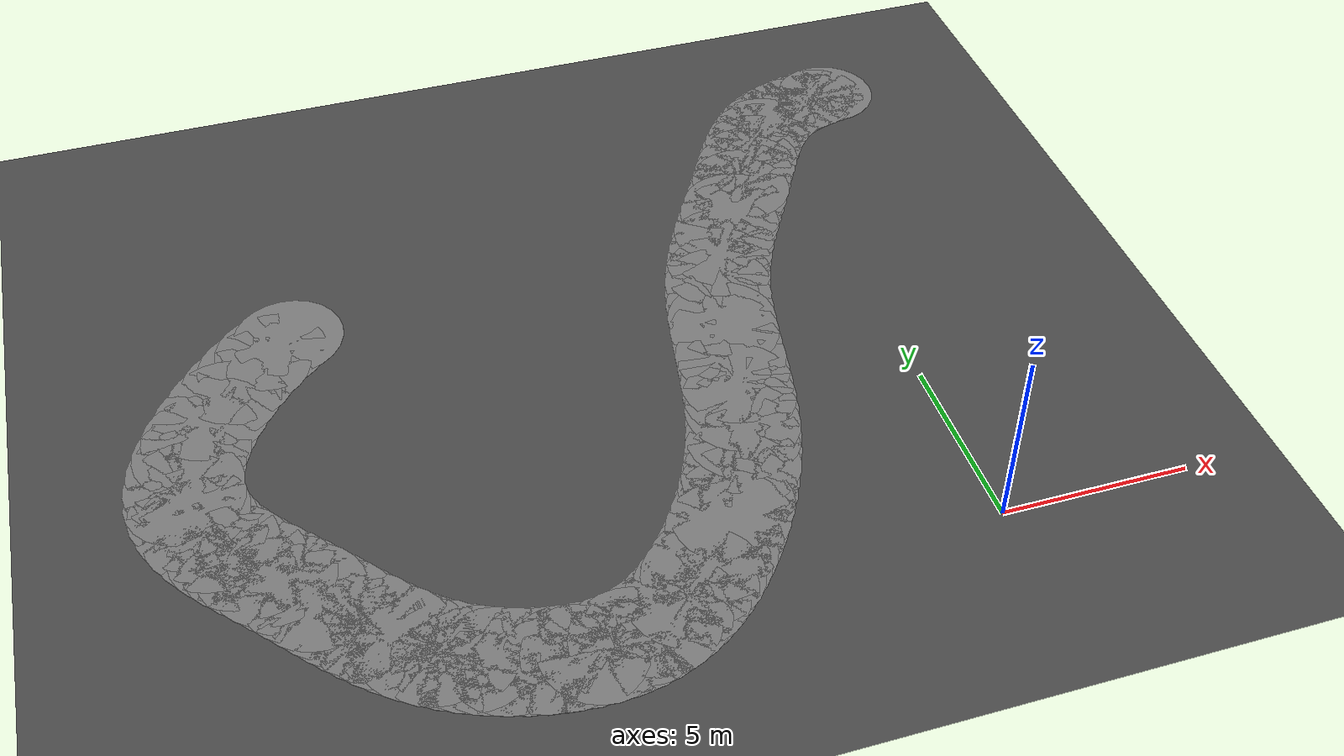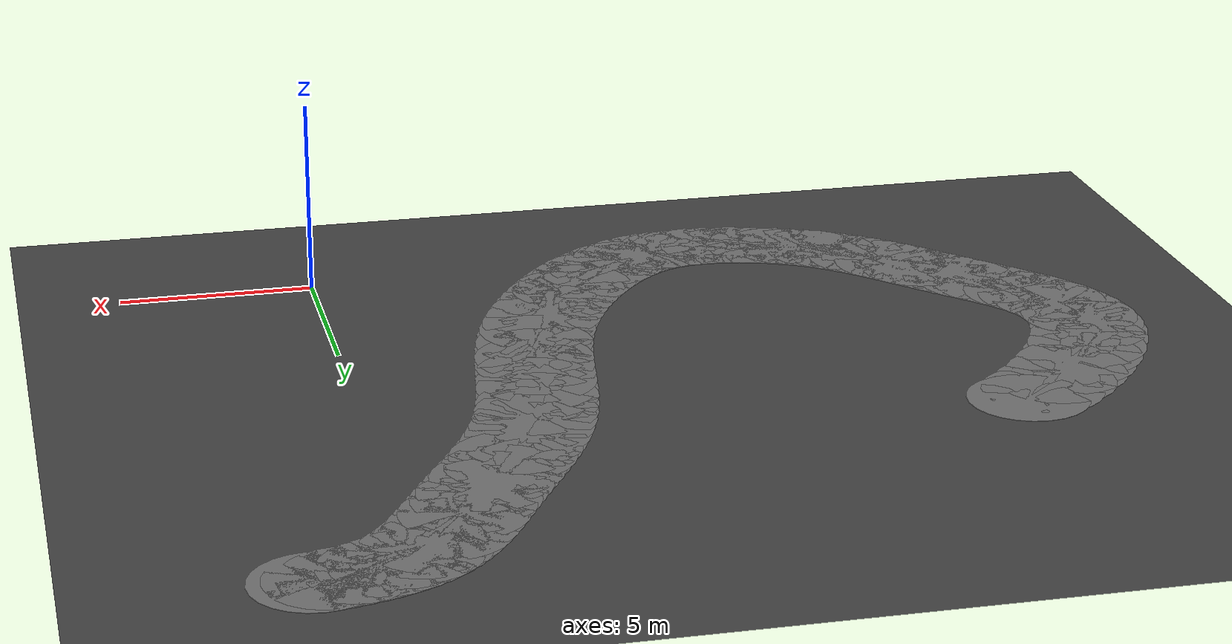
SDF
<sdf version="1.6">
 <world name="mirror_edge_world">
  <model name="ground_plane">
   <static>true</static>
   <link name="link">
    <collision name="collision">
     <geometry><plane><normal>0 0 1</normal><size>100 100</size></plane></geometry>
    </collision>
    <visual name="visual">
     <geometry><plane><normal>0 0 1</normal><size>100 100</size></plane></geometry>
     <material>
      <ambient>0.3 0.3 0.3 1</ambient>
      <diffuse>0.3 0.3 0.3 1</diffuse>
      <specular>0.5 0.5 0.5 1</specular>
      <emissive>0 0 0 1</emissive>
     </material>
    </visual>
   </link>
  </model>
  <model name="corridor_hex_398_0">
   <static>true</static>
   <link name="link">
    <pose>-15.799 11.472 0.005 0 0 0</pose>
    <visual name="visual">
     <geometry><cylinder><radius>1.5</radius><length>0.01</length><segments>6</segments></cylinder></geometry>
     <material>
      <ambient>0.5 0.5 0.5 1</ambient>
      <diffuse>0.5 0.5 0.5 1</diffuse>
      <specular>0.3 0.3 0.3 1</specular>
      <emissive>0 0 0 1</emissive>
     </material>
    </visual>
   </link>
  </model>
  <model name="corridor_hex_399_0">
   <static>true</static>
   <link name="link">
    <pose>-16.321 11.047 0.005 0 0 0</pose>
    <visual name="visual">
     <geometry><cylinder><radius>1.5</radius><length>0.01</length><segments>6</segments></cylinder></geometry>
     <material>
      <ambient>0.5 0.5 0.5 1</ambient>
      <diffuse>0.5 0.5 0.5 1</diffuse>
      <specular>0.3 0.3 0.3 1</specular>
      <emissive>0 0 0 1</emissive>
     </material>
    </visual>
   </link>
  </model>
  <model name="corridor_hex_400_0">
   <static>true</static>
   <link name="link">
    <pose>-16.825 10.576 0.005 0 0 0</pose>
    <visual name="visual">
     <geometry><cylinder><radius>1.5</radius><length>0.01</length><segments>6</segments></cylinder></geometry>
     <material>
      <ambient>0.5 0.5 0.5 1</ambient>
      <diffuse>0.5 0.5 0.5 1</diffuse>
      <specular>0.3 0.3 0.3 1</specular>
      <emissive>0 0 0 1</emissive>
     </material>
    </visual>
   </link>
  </model>
  <model name="corridor_hex_401_0">
   <static>true</static>
   <link name="link">
    <pose>-17.301 10.068 0.005 0 0 0</pose>
    <visual name="visual">
     <geometry><cylinder><radius>1.5</radius><length>0.01</length><segments>6</segments></cylinder></geometry>
     <material>
      <ambient>0.5 0.5 0.5 1</ambient>
      <diffuse>0.5 0.5 0.5 1</diffuse>
      <specular>0.3 0.3 0.3 1</specular>
      <emissive>0 0 0 1</emissive>
     </material>
    </visual>
   </link>
  </model>
  <model name="corridor_hex_402_0">
   <static>true</static>
   <link name="link">
    <pose>-17.739 9.534 0.005 0 0 0</pose>
    <visual name="visual">
     <geometry><cylinder><radius>1.5</radius><length>0.01</length><segments>6</segments></cylinder></geometry>
     <material>
      <ambient>0.5 0.5 0.5 1</ambient>
      <diffuse>0.5 0.5 0.5 1</diffuse>
      <specular>0.3 0.3 0.3 1</specular>
      <emissive>0 0 0 1</emissive>
     </material>
    </visual>
   </link>
  </model>
  <model name="corridor_hex_403_0">
   <static>true</static>
   <link name="link">
    <pose>-18.129 8.984 0.005 0 0 0</pose>
    <visual name="visual">
     <geometry><cylinder><radius>1.5</radius><length>0.01</length><segments>6</segments></cylinder></geometry>
     <material>
      <ambient>0.5 0.5 0.5 1</ambient>
      <diffuse>0.5 0.5 0.5 1</diffuse>
      <specular>0.3 0.3 0.3 1</specular>
      <emissive>0 0 0 1</emissive>
     </material>
    </visual>
   </link>
  </model>
  <model name="corridor_hex_404_0">
   <static>true</static>
   <link name="link">
    <pose>-18.462 8.429 0.005 0 0 0</pose>
    <visual name="visual">
     <geometry><cylinder><radius>1.5</radius><length>0.01</length><segments>6</segments></cylinder></geometry>
     <material>
      <ambient>0.5 0.5 0.5 1</ambient>
      <diffuse>0.5 0.5 0.5 1</diffuse>
      <specular>0.3 0.3 0.3 1</specular>
      <emissive>0 0 0 1</emissive>
     </material>
    </visual>
   </link>
  </model>
  <model name="corridor_hex_405_0">
   <static>true</static>
   <link name="link">
    <pose>-18.729 7.879 0.005 0 0 0</pose>
    <visual name="visual">
     <geometry><cylinder><radius>1.5</radius><length>0.01</length><segments>6</segments></cylinder></geometry>
     <material>
      <ambient>0.5 0.5 0.5 1</ambient>
      <diffuse>0.5 0.5 0.5 1</diffuse>
      <specular>0.3 0.3 0.3 1</specular>
      <emissive>0 0 0 1</emissive>
     </material>
    </visual>
   </link>
  </model>
  <model name="corridor_hex_406_0">
   <static>true</static>
   <link name="link">
    <pose>-18.92 7.343 0.005 0 0 0</pose>
    <visual name="visual">
     <geometry><cylinder><radius>1.5</radius><length>0.01</length><segments>6</segments></cylinder></geometry>
     <material>
      <ambient>0.5 0.5 0.5 1</ambient>
      <diffuse>0.5 0.5 0.5 1</diffuse>
      <specular>0.3 0.3 0.3 1</specular>
      <emissive>0 0 0 1</emissive>
     </material>
    </visual>
   </link>
  </model>
  <model name="corridor_hex_407_0">
   <static>true</static>
   <link name="link">
    <pose>-19.025 6.833 0.005 0 0 0</pose>
    <visual name="visual">
     <geometry><cylinder><radius>1.5</radius><length>0.01</length><segments>6</segments></cylinder></geometry>
     <material>
      <ambient>0.5 0.5 0.5 1</ambient>
      <diffuse>0.5 0.5 0.5 1</diffuse>
      <specular>0.3 0.3 0.3 1</specular>
      <emissive>0 0 0 1</emissive>
     </material>
    </visual>
   </link>
  </model>
  <model name="corridor_hex_408_0">
   <static>true</static>
   <link name="link">
    <pose>-19.043 6.354 0.005 0 0 0</pose>
    <visual name="visual">
     <geometry><cylinder><radius>1.5</radius><length>0.01</length><segments>6</segments></cylinder></geometry>
     <material>
      <ambient>0.5 0.5 0.5 1</ambient>
      <diffuse>0.5 0.5 0.5 1</diffuse>
      <specular>0.3 0.3 0.3 1</specular>
      <emissive>0 0 0 1</emissive>
     </material>
    </visual>
   </link>
  </model>
  <model name="corridor_hex_409_0">
   <static>true</static>
   <link name="link">
    <pose>-18.983 5.903 0.005 0 0 0</pose>
    <visual name="visual">
     <geometry><cylinder><radius>1.5</radius><length>0.01</length><segments>6</segments></cylinder></geometry>
     <material>
      <ambient>0.5 0.5 0.5 1</ambient>
      <diffuse>0.5 0.5 0.5 1</diffuse>
      <specular>0.3 0.3 0.3 1</specular>
      <emissive>0 0 0 1</emissive>
     </material>
    </visual>
   </link>
  </model>
  <model name="corridor_hex_410_0">
   <static>true</static>
   <link name="link">
    <pose>-18.856 5.477 0.005 0 0 0</pose>
    <visual name="visual">
     <geometry><cylinder><radius>1.5</radius><length>0.01</length><segments>6</segments></cylinder></geometry>
     <material>
      <ambient>0.5 0.5 0.5 1</ambient>
      <diffuse>0.5 0.5 0.5 1</diffuse>
      <specular>0.3 0.3 0.3 1</specular>
      <emissive>0 0 0 1</emissive>
     </material>
    </visual>
   </link>
  </model>
  <model name="corridor_hex_411_0">
   <static>true</static>
   <link name="link">
    <pose>-18.672 5.073 0.005 0 0 0</pose>
    <visual name="visual">
     <geometry><cylinder><radius>1.5</radius><length>0.01</length><segments>6</segments></cylinder></geometry>
     <material>
      <ambient>0.5 0.5 0.5 1</ambient>
      <diffuse>0.5 0.5 0.5 1</diffuse>
      <specular>0.3 0.3 0.3 1</specular>
      <emissive>0 0 0 1</emissive>
     </material>
    </visual>
   </link>
  </model>
  <model name="corridor_hex_412_0">
   <static>true</static>
   <link name="link">
    <pose>-18.44 4.688 0.005 0 0 0</pose>
    <visual name="visual">
     <geometry><cylinder><radius>1.5</radius><length>0.01</length><segments>6</segments></cylinder></geometry>
     <material>
      <ambient>0.5 0.5 0.5 1</ambient>
      <diffuse>0.5 0.5 0.5 1</diffuse>
      <specular>0.3 0.3 0.3 1</specular>
      <emissive>0 0 0 1</emissive>
     </material>
    </visual>
   </link>
  </model>
  <model name="corridor_hex_413_0">
   <static>true</static>
   <link name="link">
    <pose>-18.173 4.319 0.005 0 0 0</pose>
    <visual name="visual">
     <geometry><cylinder><radius>1.5</radius><length>0.01</length><segments>6</segments></cylinder></geometry>
     <material>
      <ambient>0.5 0.5 0.5 1</ambient>
      <diffuse>0.5 0.5 0.5 1</diffuse>
      <specular>0.3 0.3 0.3 1</specular>
      <emissive>0 0 0 1</emissive>
     </material>
    </visual>
   </link>
  </model>
  <model name="corridor_hex_414_0">
   <static>true</static>
   <link name="link">
    <pose>-17.88 3.963 0.005 0 0 0</pose>
    <visual name="visual">
     <geometry><cylinder><radius>1.5</radius><length>0.01</length><segments>6</segments></cylinder></geometry>
     <material>
      <ambient>0.5 0.5 0.5 1</ambient>
      <diffuse>0.5 0.5 0.5 1</diffuse>
      <specular>0.3 0.3 0.3 1</specular>
      <emissive>0 0 0 1</emissive>
     </material>
    </visual>
   </link>
  </model>
  <model name="corridor_hex_415_0">
   <static>true</static>
   <link name="link">
    <pose>-17.571 3.618 0.005 0 0 0</pose>
    <visual name="visual">
     <geometry><cylinder><radius>1.5</radius><length>0.01</length><segments>6</segments></cylinder></geometry>
     <material>
      <ambient>0.5 0.5 0.5 1</ambient>
      <diffuse>0.5 0.5 0.5 1</diffuse>
      <specular>0.3 0.3 0.3 1</specular>
      <emissive>0 0 0 1</emissive>
     </material>
    </visual>
   </link>
  </model>
  <model name="corridor_hex_416_0">
   <static>true</static>
   <link name="link">
    <pose>-17.258 3.279 0.005 0 0 0</pose>
    <visual name="visual">
     <geometry><cylinder><radius>1.5</radius><length>0.01</length><segments>6</segments></cylinder></geometry>
     <material>
      <ambient>0.5 0.5 0.5 1</ambient>
      <diffuse>0.5 0.5 0.5 1</diffuse>
      <specular>0.3 0.3 0.3 1</specular>
      <emissive>0 0 0 1</emissive>
     </material>
    </visual>
   </link>
  </model>
  <model name="corridor_hex_417_0">
   <static>true</static>
   <link name="link">
    <pose>-16.949 2.944 0.005 0 0 0</pose>
    <visual name="visual">
     <geometry><cylinder><radius>1.5</radius><length>0.01</length><segments>6</segments></cylinder></geometry>
     <material>
      <ambient>0.5 0.5 0.5 1</ambient>
      <diffuse>0.5 0.5 0.5 1</diffuse>
      <specular>0.3 0.3 0.3 1</specular>
      <emissive>0 0 0 1</emissive>
     </material>
    </visual>
   </link>
  </model>
  <model name="corridor_hex_418_0">
   <static>true</static>
   <link name="link">
    <pose>-16.654 2.612 0.005 0 0 0</pose>
    <visual name="visual">
     <geometry><cylinder><radius>1.5</radius><length>0.01</length><segments>6</segments></cylinder></geometry>
     <material>
      <ambient>0.5 0.5 0.5 1</ambient>
      <diffuse>0.5 0.5 0.5 1</diffuse>
      <specular>0.3 0.3 0.3 1</specular>
      <emissive>0 0 0 1</emissive>
     </material>
    </visual>
   </link>
  </model>
  <model name="corridor_hex_419_0">
   <static>true</static>
   <link name="link">
    <pose>-16.367 2.283 0.005 0 0 0</pose>
    <visual name="visual">
     <geometry><cylinder><radius>1.5</radius><length>0.01</length><segments>6</segments></cylinder></geometry>
     <material>
      <ambient>0.5 0.5 0.5 1</ambient>
      <diffuse>0.5 0.5 0.5 1</diffuse>
      <specular>0.3 0.3 0.3 1</specular>
      <emissive>0 0 0 1</emissive>
     </material>
    </visual>
   </link>
  </model>
  <model name="corridor_hex_420_0">
   <static>true</static>
   <link name="link">
    <pose>-16.088 1.959 0.005 0 0 0</pose>
    <visual name="visual">
     <geometry><cylinder><radius>1.5</radius><length>0.01</length><segments>6</segments></cylinder></geometry>
     <material>
      <ambient>0.5 0.5 0.5 1</ambient>
      <diffuse>0.5 0.5 0.5 1</diffuse>
      <specular>0.3 0.3 0.3 1</specular>
      <emissive>0 0 0 1</emissive>
     </material>
    </visual>
   </link>
  </model>
  <model name="corridor_hex_421_0">
   <static>true</static>
   <link name="link">
    <pose>-15.811 1.643 0.005 0 0 0</pose>
    <visual name="visual">
     <geometry><cylinder><radius>1.5</radius><length>0.01</length><segments>6</segments></cylinder></geometry>
     <material>
      <ambient>0.5 0.5 0.5 1</ambient>
      <diffuse>0.5 0.5 0.5 1</diffuse>
      <specular>0.3 0.3 0.3 1</specular>
      <emissive>0 0 0 1</emissive>
     </material>
    </visual>
   </link>
  </model>
  <model name="corridor_hex_422_0">
   <static>true</static>
   <link name="link">
    <pose>-15.532 1.336 0.005 0 0 0</pose>
    <visual name="visual">
     <geometry><cylinder><radius>1.5</radius><length>0.01</length><segments>6</segments></cylinder></geometry>
     <material>
      <ambient>0.5 0.5 0.5 1</ambient>
      <diffuse>0.5 0.5 0.5 1</diffuse>
      <specular>0.3 0.3 0.3 1</specular>
      <emissive>0 0 0 1</emissive>
     </material>
    </visual>
   </link>
  </model>
  <model name="corridor_hex_423_0">
   <static>true</static>
   <link name="link">
    <pose>-15.25 1.039 0.005 0 0 0</pose>
    <visual name="visual">
     <geometry><cylinder><radius>1.5</radius><length>0.01</length><segments>6</segments></cylinder></geometry>
     <material>
      <ambient>0.5 0.5 0.5 1</ambient>
      <diffuse>0.5 0.5 0.5 1</diffuse>
      <specular>0.3 0.3 0.3 1</specular>
      <emissive>0 0 0 1</emissive>
     </material>
    </visual>
   </link>
  </model>
  <model name="corridor_hex_424_0">
   <static>true</static>
   <link name="link">
    <pose>-14.959 0.756 0.005 0 0 0</pose>
    <visual name="visual">
     <geometry><cylinder><radius>1.5</radius><length>0.01</length><segments>6</segments></cylinder></geometry>
     <material>
      <ambient>0.5 0.5 0.5 1</ambient>
      <diffuse>0.5 0.5 0.5 1</diffuse>
      <specular>0.3 0.3 0.3 1</specular>
      <emissive>0 0 0 1</emissive>
     </material>
    </visual>
   </link>
  </model>
  <model name="corridor_hex_425_0">
   <static>true</static>
   <link name="link">
    <pose>-14.656 0.487 0.005 0 0 0</pose>
    <visual name="visual">
     <geometry><cylinder><radius>1.5</radius><length>0.01</length><segments>6</segments></cylinder></geometry>
     <material>
      <ambient>0.5 0.5 0.5 1</ambient>
      <diffuse>0.5 0.5 0.5 1</diffuse>
      <specular>0.3 0.3 0.3 1</specular>
      <emissive>0 0 0 1</emissive>
     </material>
    </visual>
   </link>
  </model>
  <model name="corridor_hex_426_0">
   <static>true</static>
   <link name="link">
    <pose>-14.338 0.234 0.005 0 0 0</pose>
    <visual name="visual">
     <geometry><cylinder><radius>1.5</radius><length>0.01</length><segments>6</segments></cylinder></geometry>
     <material>
      <ambient>0.5 0.5 0.5 1</ambient>
      <diffuse>0.5 0.5 0.5 1</diffuse>
      <specular>0.3 0.3 0.3 1</specular>
      <emissive>0 0 0 1</emissive>
     </material>
    </visual>
   </link>
  </model>
  <model name="corridor_hex_427_0">
   <static>true</static>
   <link name="link">
    <pose>-14.0 0.0 0.005 0 0 0</pose>
    <visual name="visual">
     <geometry><cylinder><radius>1.5</radius><length>0.01</length><segments>6</segments></cylinder></geometry>
     <material>
      <ambient>0.5 0.5 0.5 1</ambient>
      <diffuse>0.5 0.5 0.5 1</diffuse>
      <specular>0.3 0.3 0.3 1</specular>
      <emissive>0 0 0 1</emissive>
     </material>
    </visual>
   </link>
  </model>
  <model name="corridor_hex_428_0">
   <static>true</static>
   <link name="link">
    <pose>-13.641 -0.214 0.005 0 0 0</pose>
    <visual name="visual">
     <geometry><cylinder><radius>1.5</radius><length>0.01</length><segments>6</segments></cylinder></geometry>
     <material>
      <ambient>0.5 0.5 0.5 1</ambient>
      <diffuse>0.5 0.5 0.5 1</diffuse>
      <specular>0.3 0.3 0.3 1</specular>
      <emissive>0 0 0 1</emissive>
     </material>
    </visual>
   </link>
  </model>
  <model name="corridor_hex_429_0">
   <static>true</static>
   <link name="link">
    <pose>-13.263 -0.407 0.005 0 0 0</pose>
    <visual name="visual">
     <geometry><cylinder><radius>1.5</radius><length>0.01</length><segments>6</segments></cylinder></geometry>
     <material>
      <ambient>0.5 0.5 0.5 1</ambient>
      <diffuse>0.5 0.5 0.5 1</diffuse>
      <specular>0.3 0.3 0.3 1</specular>
      <emissive>0 0 0 1</emissive>
     </material>
    </visual>
   </link>
  </model>
  <model name="corridor_hex_430_0">
   <static>true</static>
   <link name="link">
    <pose>-12.871 -0.577 0.005 0 0 0</pose>
    <visual name="visual">
     <geometry><cylinder><radius>1.5</radius><length>0.01</length><segments>6</segments></cylinder></geometry>
     <material>
      <ambient>0.5 0.5 0.5 1</ambient>
      <diffuse>0.5 0.5 0.5 1</diffuse>
      <specular>0.3 0.3 0.3 1</specular>
      <emissive>0 0 0 1</emissive>
     </material>
    </visual>
   </link>
  </model>
  <model name="corridor_hex_431_0">
   <static>true</static>
   <link name="link">
    <pose>-12.468 -0.723 0.005 0 0 0</pose>
    <visual name="visual">
     <geometry><cylinder><radius>1.5</radius><length>0.01</length><segments>6</segments></cylinder></geometry>
     <material>
      <ambient>0.5 0.5 0.5 1</ambient>
      <diffuse>0.5 0.5 0.5 1</diffuse>
      <specular>0.3 0.3 0.3 1</specular>
      <emissive>0 0 0 1</emissive>
     </material>
    </visual>
   </link>
  </model>
  <model name="corridor_hex_432_0">
   <static>true</static>
   <link name="link">
    <pose>-12.059 -0.843 0.005 0 0 0</pose>
    <visual name="visual">
     <geometry><cylinder><radius>1.5</radius><length>0.01</length><segments>6</segments></cylinder></geometry>
     <material>
      <ambient>0.5 0.5 0.5 1</ambient>
      <diffuse>0.5 0.5 0.5 1</diffuse>
      <specular>0.3 0.3 0.3 1</specular>
      <emissive>0 0 0 1</emissive>
     </material>
    </visual>
   </link>
  </model>
  <model name="corridor_hex_433_0">
   <static>true</static>
   <link name="link">
    <pose>-11.648 -0.936 0.005 0 0 0</pose>
    <visual name="visual">
     <geometry><cylinder><radius>1.5</radius><length>0.01</length><segments>6</segments></cylinder></geometry>
     <material>
      <ambient>0.5 0.5 0.5 1</ambient>
      <diffuse>0.5 0.5 0.5 1</diffuse>
      <specular>0.3 0.3 0.3 1</specular>
      <emissive>0 0 0 1</emissive>
     </material>
    </visual>
   </link>
  </model>
  <model name="corridor_hex_434_0">
   <static>true</static>
   <link name="link">
    <pose>-11.238 -1.0 0.005 0 0 0</pose>
    <visual name="visual">
     <geometry><cylinder><radius>1.5</radius><length>0.01</length><segments>6</segments></cylinder></geometry>
     <material>
      <ambient>0.5 0.5 0.5 1</ambient>
      <diffuse>0.5 0.5 0.5 1</diffuse>
      <specular>0.3 0.3 0.3 1</specular>
      <emissive>0 0 0 1</emissive>
     </material>
    </visual>
   </link>
  </model>
  <model name="corridor_hex_435_0">
   <static>true</static>
   <link name="link">
    <pose>-10.835 -1.034 0.005 0 0 0</pose>
    <visual name="visual">
     <geometry><cylinder><radius>1.5</radius><length>0.01</length><segments>6</segments></cylinder></geometry>
     <material>
      <ambient>0.5 0.5 0.5 1</ambient>
      <diffuse>0.5 0.5 0.5 1</diffuse>
      <specular>0.3 0.3 0.3 1</specular>
      <emissive>0 0 0 1</emissive>
     </material>
    </visual>
   </link>
  </model>
  <model name="corridor_hex_436_0">
   <static>true</static>
   <link name="link">
    <pose>-10.441 -1.038 0.005 0 0 0</pose>
    <visual name="visual">
     <geometry><cylinder><radius>1.5</radius><length>0.01</length><segments>6</segments></cylinder></geometry>
     <material>
      <ambient>0.5 0.5 0.5 1</ambient>
      <diffuse>0.5 0.5 0.5 1</diffuse>
      <specular>0.3 0.3 0.3 1</specular>
      <emissive>0 0 0 1</emissive>
     </material>
    </visual>
   </link>
  </model>
  <model name="corridor_hex_437_0">
   <static>true</static>
   <link name="link">
    <pose>-10.062 -1.008 0.005 0 0 0</pose>
    <visual name="visual">
     <geometry><cylinder><radius>1.5</radius><length>0.01</length><segments>6</segments></cylinder></geometry>
     <material>
      <ambient>0.5 0.5 0.5 1</ambient>
      <diffuse>0.5 0.5 0.5 1</diffuse>
      <specular>0.3 0.3 0.3 1</specular>
      <emissive>0 0 0 1</emissive>
     </material>
    </visual>
   </link>
  </model>
  <model name="corridor_hex_438_0">
   <static>true</static>
   <link name="link">
    <pose>-9.7 -0.945 0.005 0 0 0</pose>
    <visual name="visual">
     <geometry><cylinder><radius>1.5</radius><length>0.01</length><segments>6</segments></cylinder></geometry>
     <material>
      <ambient>0.5 0.5 0.5 1</ambient>
      <diffuse>0.5 0.5 0.5 1</diffuse>
      <specular>0.3 0.3 0.3 1</specular>
      <emissive>0 0 0 1</emissive>
     </material>
    </visual>
   </link>
  </model>
  <model name="corridor_hex_439_0">
   <static>true</static>
   <link name="link">
    <pose>-9.356 -0.849 0.005 0 0 0</pose>
    <visual name="visual">
     <geometry><cylinder><radius>1.5</radius><length>0.01</length><segments>6</segments></cylinder></geometry>
     <material>
      <ambient>0.5 0.5 0.5 1</ambient>
      <diffuse>0.5 0.5 0.5 1</diffuse>
      <specular>0.3 0.3 0.3 1</specular>
      <emissive>0 0 0 1</emissive>
     </material>
    </visual>
   </link>
  </model>
  <model name="corridor_hex_440_0">
   <static>true</static>
   <link name="link">
    <pose>-9.028 -0.721 0.005 0 0 0</pose>
    <visual name="visual">
     <geometry><cylinder><radius>1.5</radius><length>0.01</length><segments>6</segments></cylinder></geometry>
     <material>
      <ambient>0.5 0.5 0.5 1</ambient>
      <diffuse>0.5 0.5 0.5 1</diffuse>
      <specular>0.3 0.3 0.3 1</specular>
      <emissive>0 0 0 1</emissive>
     </material>
    </visual>
   </link>
  </model>
  <model name="corridor_hex_441_0">
   <static>true</static>
   <link name="link">
    <pose>-8.716 -0.565 0.005 0 0 0</pose>
    <visual name="visual">
     <geometry><cylinder><radius>1.5</radius><length>0.01</length><segments>6</segments></cylinder></geometry>
     <material>
      <ambient>0.5 0.5 0.5 1</ambient>
      <diffuse>0.5 0.5 0.5 1</diffuse>
      <specular>0.3 0.3 0.3 1</specular>
      <emissive>0 0 0 1</emissive>
     </material>
    </visual>
   </link>
  </model>
  <model name="corridor_hex_442_0">
   <static>true</static>
   <link name="link">
    <pose>-8.417 -0.38 0.005 0 0 0</pose>
    <visual name="visual">
     <geometry><cylinder><radius>1.5</radius><length>0.01</length><segments>6</segments></cylinder></geometry>
     <material>
      <ambient>0.5 0.5 0.5 1</ambient>
      <diffuse>0.5 0.5 0.5 1</diffuse>
      <specular>0.3 0.3 0.3 1</specular>
      <emissive>0 0 0 1</emissive>
     </material>
    </visual>
   </link>
  </model>
  <model name="corridor_hex_443_0">
   <static>true</static>
   <link name="link">
    <pose>-8.131 -0.17 0.005 0 0 0</pose>
    <visual name="visual">
     <geometry><cylinder><radius>1.5</radius><length>0.01</length><segments>6</segments></cylinder></geometry>
     <material>
      <ambient>0.5 0.5 0.5 1</ambient>
      <diffuse>0.5 0.5 0.5 1</diffuse>
      <specular>0.3 0.3 0.3 1</specular>
      <emissive>0 0 0 1</emissive>
     </material>
    </visual>
   </link>
  </model>
  <model name="corridor_hex_444_0">
   <static>true</static>
   <link name="link">
    <pose>-7.856 0.065 0.005 0 0 0</pose>
    <visual name="visual">
     <geometry><cylinder><radius>1.5</radius><length>0.01</length><segments>6</segments></cylinder></geometry>
     <material>
      <ambient>0.5 0.5 0.5 1</ambient>
      <diffuse>0.5 0.5 0.5 1</diffuse>
      <specular>0.3 0.3 0.3 1</specular>
      <emissive>0 0 0 1</emissive>
     </material>
    </visual>
   </link>
  </model>
  <model name="corridor_hex_445_0">
   <static>true</static>
   <link name="link">
    <pose>-7.59 0.322 0.005 0 0 0</pose>
    <visual name="visual">
     <geometry><cylinder><radius>1.5</radius><length>0.01</length><segments>6</segments></cylinder></geometry>
     <material>
      <ambient>0.5 0.5 0.5 1</ambient>
      <diffuse>0.5 0.5 0.5 1</diffuse>
      <specular>0.3 0.3 0.3 1</specular>
      <emissive>0 0 0 1</emissive>
     </material>
    </visual>
   </link>
  </model>
  <model name="corridor_hex_446_0">
   <static>true</static>
   <link name="link">
    <pose>-7.333 0.6 0.005 0 0 0</pose>
    <visual name="visual">
     <geometry><cylinder><radius>1.5</radius><length>0.01</length><segments>6</segments></cylinder></geometry>
     <material>
      <ambient>0.5 0.5 0.5 1</ambient>
      <diffuse>0.5 0.5 0.5 1</diffuse>
      <specular>0.3 0.3 0.3 1</specular>
      <emissive>0 0 0 1</emissive>
     </material>
    </visual>
   </link>
  </model>
  <model name="corridor_hex_447_0">
   <static>true</static>
   <link name="link">
    <pose>-7.082 0.897 0.005 0 0 0</pose>
    <visual name="visual">
     <geometry><cylinder><radius>1.5</radius><length>0.01</length><segments>6</segments></cylinder></geometry>
     <material>
      <ambient>0.5 0.5 0.5 1</ambient>
      <diffuse>0.5 0.5 0.5 1</diffuse>
      <specular>0.3 0.3 0.3 1</specular>
      <emissive>0 0 0 1</emissive>
     </material>
    </visual>
   </link>
  </model>
  <model name="corridor_hex_448_0">
   <static>true</static>
   <link name="link">
    <pose>-6.837 1.212 0.005 0 0 0</pose>
    <visual name="visual">
     <geometry><cylinder><radius>1.5</radius><length>0.01</length><segments>6</segments></cylinder></geometry>
     <material>
      <ambient>0.5 0.5 0.5 1</ambient>
      <diffuse>0.5 0.5 0.5 1</diffuse>
      <specular>0.3 0.3 0.3 1</specular>
      <emissive>0 0 0 1</emissive>
     </material>
    </visual>
   </link>
  </model>
  <model name="corridor_hex_449_0">
   <static>true</static>
   <link name="link">
    <pose>-6.599 1.543 0.005 0 0 0</pose>
    <visual name="visual">
     <geometry><cylinder><radius>1.5</radius><length>0.01</length><segments>6</segments></cylinder></geometry>
     <material>
      <ambient>0.5 0.5 0.5 1</ambient>
      <diffuse>0.5 0.5 0.5 1</diffuse>
      <specular>0.3 0.3 0.3 1</specular>
      <emissive>0 0 0 1</emissive>
     </material>
    </visual>
   </link>
  </model>
  <model name="corridor_hex_450_0">
   <static>true</static>
   <link name="link">
    <pose>-6.368 1.89 0.005 0 0 0</pose>
    <visual name="visual">
     <geometry><cylinder><radius>1.5</radius><length>0.01</length><segments>6</segments></cylinder></geometry>
     <material>
      <ambient>0.5 0.5 0.5 1</ambient>
      <diffuse>0.5 0.5 0.5 1</diffuse>
      <specular>0.3 0.3 0.3 1</specular>
      <emissive>0 0 0 1</emissive>
     </material>
    </visual>
   </link>
  </model>
  <model name="corridor_hex_451_0">
   <static>true</static>
   <link name="link">
    <pose>-6.145 2.254 0.005 0 0 0</pose>
    <visual name="visual">
     <geometry><cylinder><radius>1.5</radius><length>0.01</length><segments>6</segments></cylinder></geometry>
     <material>
      <ambient>0.5 0.5 0.5 1</ambient>
      <diffuse>0.5 0.5 0.5 1</diffuse>
      <specular>0.3 0.3 0.3 1</specular>
      <emissive>0 0 0 1</emissive>
     </material>
    </visual>
   </link>
  </model>
  <model name="corridor_hex_452_0">
   <static>true</static>
   <link name="link">
    <pose>-5.932 2.634 0.005 0 0 0</pose>
    <visual name="visual">
     <geometry><cylinder><radius>1.5</radius><length>0.01</length><segments>6</segments></cylinder></geometry>
     <material>
      <ambient>0.5 0.5 0.5 1</ambient>
      <diffuse>0.5 0.5 0.5 1</diffuse>
      <specular>0.3 0.3 0.3 1</specular>
      <emissive>0 0 0 1</emissive>
     </material>
    </visual>
   </link>
  </model>
  <model name="corridor_hex_453_0">
   <static>true</static>
   <link name="link">
    <pose>-5.731 3.03 0.005 0 0 0</pose>
    <visual name="visual">
     <geometry><cylinder><radius>1.5</radius><length>0.01</length><segments>6</segments></cylinder></geometry>
     <material>
      <ambient>0.5 0.5 0.5 1</ambient>
      <diffuse>0.5 0.5 0.5 1</diffuse>
      <specular>0.3 0.3 0.3 1</specular>
      <emissive>0 0 0 1</emissive>
     </material>
    </visual>
   </link>
  </model>
  <model name="corridor_hex_454_0">
   <static>true</static>
   <link name="link">
    <pose>-5.542 3.441 0.005 0 0 0</pose>
    <visual name="visual">
     <geometry><cylinder><radius>1.5</radius><length>0.01</length><segments>6</segments></cylinder></geometry>
     <material>
      <ambient>0.5 0.5 0.5 1</ambient>
      <diffuse>0.5 0.5 0.5 1</diffuse>
      <specular>0.3 0.3 0.3 1</specular>
      <emissive>0 0 0 1</emissive>
     </material>
    </visual>
   </link>
  </model>
  <model name="corridor_hex_455_0">
   <static>true</static>
   <link name="link">
    <pose>-5.367 3.867 0.005 0 0 0</pose>
    <visual name="visual">
     <geometry><cylinder><radius>1.5</radius><length>0.01</length><segments>6</segments></cylinder></geometry>
     <material>
      <ambient>0.5 0.5 0.5 1</ambient>
      <diffuse>0.5 0.5 0.5 1</diffuse>
      <specular>0.3 0.3 0.3 1</specular>
      <emissive>0 0 0 1</emissive>
     </material>
    </visual>
   </link>
  </model>
  <model name="corridor_hex_456_0">
   <static>true</static>
   <link name="link">
    <pose>-5.208 4.309 0.005 0 0 0</pose>
    <visual name="visual">
     <geometry><cylinder><radius>1.5</radius><length>0.01</length><segments>6</segments></cylinder></geometry>
     <material>
      <ambient>0.5 0.5 0.5 1</ambient>
      <diffuse>0.5 0.5 0.5 1</diffuse>
      <specular>0.3 0.3 0.3 1</specular>
      <emissive>0 0 0 1</emissive>
     </material>
    </visual>
   </link>
  </model>
  <model name="corridor_hex_457_0">
   <static>true</static>
   <link name="link">
    <pose>-5.065 4.766 0.005 0 0 0</pose>
    <visual name="visual">
     <geometry><cylinder><radius>1.5</radius><length>0.01</length><segments>6</segments></cylinder></geometry>
     <material>
      <ambient>0.5 0.5 0.5 1</ambient>
      <diffuse>0.5 0.5 0.5 1</diffuse>
      <specular>0.3 0.3 0.3 1</specular>
      <emissive>0 0 0 1</emissive>
     </material>
    </visual>
   </link>
  </model>
  <model name="corridor_hex_458_0">
   <static>true</static>
   <link name="link">
    <pose>-4.94 5.238 0.005 0 0 0</pose>
    <visual name="visual">
     <geometry><cylinder><radius>1.5</radius><length>0.01</length><segments>6</segments></cylinder></geometry>
     <material>
      <ambient>0.5 0.5 0.5 1</ambient>
      <diffuse>0.5 0.5 0.5 1</diffuse>
      <specular>0.3 0.3 0.3 1</specular>
      <emissive>0 0 0 1</emissive>
     </material>
    </visual>
   </link>
  </model>
  <model name="corridor_hex_459_0">
   <static>true</static>
   <link name="link">
    <pose>-4.831 5.722 0.005 0 0 0</pose>
    <visual name="visual">
     <geometry><cylinder><radius>1.5</radius><length>0.01</length><segments>6</segments></cylinder></geometry>
     <material>
      <ambient>0.5 0.5 0.5 1</ambient>
      <diffuse>0.5 0.5 0.5 1</diffuse>
      <specular>0.3 0.3 0.3 1</specular>
      <emissive>0 0 0 1</emissive>
     </material>
    </visual>
   </link>
  </model>
  <model name="corridor_hex_460_0">
   <static>true</static>
   <link name="link">
    <pose>-4.735 6.217 0.005 0 0 0</pose>
    <visual name="visual">
     <geometry><cylinder><radius>1.5</radius><length>0.01</length><segments>6</segments></cylinder></geometry>
     <material>
      <ambient>0.5 0.5 0.5 1</ambient>
      <diffuse>0.5 0.5 0.5 1</diffuse>
      <specular>0.3 0.3 0.3 1</specular>
      <emissive>0 0 0 1</emissive>
     </material>
    </visual>
   </link>
  </model>
  <model name="corridor_hex_461_0">
   <static>true</static>
   <link name="link">
    <pose>-4.648 6.718 0.005 0 0 0</pose>
    <visual name="visual">
     <geometry><cylinder><radius>1.5</radius><length>0.01</length><segments>6</segments></cylinder></geometry>
     <material>
      <ambient>0.5 0.5 0.5 1</ambient>
      <diffuse>0.5 0.5 0.5 1</diffuse>
      <specular>0.3 0.3 0.3 1</specular>
      <emissive>0 0 0 1</emissive>
     </material>
    </visual>
   </link>
  </model>
  <model name="corridor_hex_462_0">
   <static>true</static>
   <link name="link">
    <pose>-4.565 7.223 0.005 0 0 0</pose>
    <visual name="visual">
     <geometry><cylinder><radius>1.5</radius><length>0.01</length><segments>6</segments></cylinder></geometry>
     <material>
      <ambient>0.5 0.5 0.5 1</ambient>
      <diffuse>0.5 0.5 0.5 1</diffuse>
      <specular>0.3 0.3 0.3 1</specular>
      <emissive>0 0 0 1</emissive>
     </material>
    </visual>
   </link>
  </model>
  <model name="corridor_hex_463_0">
   <static>true</static>
   <link name="link">
    <pose>-4.484 7.728 0.005 0 0 0</pose>
    <visual name="visual">
     <geometry><cylinder><radius>1.5</radius><length>0.01</length><segments>6</segments></cylinder></geometry>
     <material>
      <ambient>0.5 0.5 0.5 1</ambient>
      <diffuse>0.5 0.5 0.5 1</diffuse>
      <specular>0.3 0.3 0.3 1</specular>
      <emissive>0 0 0 1</emissive>
     </material>
    </visual>
   </link>
  </model>
  <model name="corridor_hex_464_0">
   <static>true</static>
   <link name="link">
    <pose>-4.399 8.231 0.005 0 0 0</pose>
    <visual name="visual">
     <geometry><cylinder><radius>1.5</radius><length>0.01</length><segments>6</segments></cylinder></geometry>
     <material>
      <ambient>0.5 0.5 0.5 1</ambient>
      <diffuse>0.5 0.5 0.5 1</diffuse>
      <specular>0.3 0.3 0.3 1</specular>
      <emissive>0 0 0 1</emissive>
     </material>
    </visual>
   </link>
  </model>
  <model name="corridor_hex_465_0">
   <static>true</static>
   <link name="link">
    <pose>-4.308 8.728 0.005 0 0 0</pose>
    <visual name="visual">
     <geometry><cylinder><radius>1.5</radius><length>0.01</length><segments>6</segments></cylinder></geometry>
     <material>
      <ambient>0.5 0.5 0.5 1</ambient>
      <diffuse>0.5 0.5 0.5 1</diffuse>
      <specular>0.3 0.3 0.3 1</specular>
      <emissive>0 0 0 1</emissive>
     </material>
    </visual>
   </link>
  </model>
  <model name="corridor_hex_466_0">
   <static>true</static>
   <link name="link">
    <pose>-4.206 9.216 0.005 0 0 0</pose>
    <visual name="visual">
     <geometry><cylinder><radius>1.5</radius><length>0.01</length><segments>6</segments></cylinder></geometry>
     <material>
      <ambient>0.5 0.5 0.5 1</ambient>
      <diffuse>0.5 0.5 0.5 1</diffuse>
      <specular>0.3 0.3 0.3 1</specular>
      <emissive>0 0 0 1</emissive>
     </material>
    </visual>
   </link>
  </model>
  <model name="corridor_hex_467_0">
   <static>true</static>
   <link name="link">
    <pose>-4.088 9.691 0.005 0 0 0</pose>
    <visual name="visual">
     <geometry><cylinder><radius>1.5</radius><length>0.01</length><segments>6</segments></cylinder></geometry>
     <material>
      <ambient>0.5 0.5 0.5 1</ambient>
      <diffuse>0.5 0.5 0.5 1</diffuse>
      <specular>0.3 0.3 0.3 1</specular>
      <emissive>0 0 0 1</emissive>
     </material>
    </visual>
   </link>
  </model>
  <model name="corridor_hex_468_0">
   <static>true</static>
   <link name="link">
    <pose>-3.952 10.152 0.005 0 0 0</pose>
    <visual name="visual">
     <geometry><cylinder><radius>1.5</radius><length>0.01</length><segments>6</segments></cylinder></geometry>
     <material>
      <ambient>0.5 0.5 0.5 1</ambient>
      <diffuse>0.5 0.5 0.5 1</diffuse>
      <specular>0.3 0.3 0.3 1</specular>
      <emissive>0 0 0 1</emissive>
     </material>
    </visual>
   </link>
  </model>
  <model name="corridor_hex_469_0">
   <static>true</static>
   <link name="link">
    <pose>-3.796 10.595 0.005 0 0 0</pose>
    <visual name="visual">
     <geometry><cylinder><radius>1.5</radius><length>0.01</length><segments>6</segments></cylinder></geometry>
     <material>
      <ambient>0.5 0.5 0.5 1</ambient>
      <diffuse>0.5 0.5 0.5 1</diffuse>
      <specular>0.3 0.3 0.3 1</specular>
      <emissive>0 0 0 1</emissive>
     </material>
    </visual>
   </link>
  </model>
  <model name="corridor_hex_470_0">
   <static>true</static>
   <link name="link">
    <pose>-3.623 11.023 0.005 0 0 0</pose>
    <visual name="visual">
     <geometry><cylinder><radius>1.5</radius><length>0.01</length><segments>6</segments></cylinder></geometry>
     <material>
      <ambient>0.5 0.5 0.5 1</ambient>
      <diffuse>0.5 0.5 0.5 1</diffuse>
      <specular>0.3 0.3 0.3 1</specular>
      <emissive>0 0 0 1</emissive>
     </material>
    </visual>
   </link>
  </model>
  <model name="corridor_hex_471_0">
   <static>true</static>
   <link name="link">
    <pose>-3.435 11.437 0.005 0 0 0</pose>
    <visual name="visual">
     <geometry><cylinder><radius>1.5</radius><length>0.01</length><segments>6</segments></cylinder></geometry>
     <material>
      <ambient>0.5 0.5 0.5 1</ambient>
      <diffuse>0.5 0.5 0.5 1</diffuse>
      <specular>0.3 0.3 0.3 1</specular>
      <emissive>0 0 0 1</emissive>
     </material>
    </visual>
   </link>
  </model>
  <model name="corridor_hex_472_0">
   <static>true</static>
   <link name="link">
    <pose>-3.236 11.838 0.005 0 0 0</pose>
    <visual name="visual">
     <geometry><cylinder><radius>1.5</radius><length>0.01</length><segments>6</segments></cylinder></geometry>
     <material>
      <ambient>0.5 0.5 0.5 1</ambient>
      <diffuse>0.5 0.5 0.5 1</diffuse>
      <specular>0.3 0.3 0.3 1</specular>
      <emissive>0 0 0 1</emissive>
     </material>
    </visual>
   </link>
  </model>
  <model name="corridor_hex_473_0">
   <static>true</static>
   <link name="link">
    <pose>-3.028 12.228 0.005 0 0 0</pose>
    <visual name="visual">
     <geometry><cylinder><radius>1.5</radius><length>0.01</length><segments>6</segments></cylinder></geometry>
     <material>
      <ambient>0.5 0.5 0.5 1</ambient>
      <diffuse>0.5 0.5 0.5 1</diffuse>
      <specular>0.3 0.3 0.3 1</specular>
      <emissive>0 0 0 1</emissive>
     </material>
    </visual>
   </link>
  </model>
  <model name="corridor_hex_474_0">
   <static>true</static>
   <link name="link">
    <pose>-2.815 12.608 0.005 0 0 0</pose>
    <visual name="visual">
     <geometry><cylinder><radius>1.5</radius><length>0.01</length><segments>6</segments></cylinder></geometry>
     <material>
      <ambient>0.5 0.5 0.5 1</ambient>
      <diffuse>0.5 0.5 0.5 1</diffuse>
      <specular>0.3 0.3 0.3 1</specular>
      <emissive>0 0 0 1</emissive>
     </material>
    </visual>
   </link>
  </model>
  <model name="corridor_hex_475_0">
   <static>true</static>
   <link name="link">
    <pose>-2.599 12.98 0.005 0 0 0</pose>
    <visual name="visual">
     <geometry><cylinder><radius>1.5</radius><length>0.01</length><segments>6</segments></cylinder></geometry>
     <material>
      <ambient>0.5 0.5 0.5 1</ambient>
      <diffuse>0.5 0.5 0.5 1</diffuse>
      <specular>0.3 0.3 0.3 1</specular>
      <emissive>0 0 0 1</emissive>
     </material>
    </visual>
   </link>
  </model>
  <model name="corridor_hex_476_0">
   <static>true</static>
   <link name="link">
    <pose>-2.384 13.345 0.005 0 0 0</pose>
    <visual name="visual">
     <geometry><cylinder><radius>1.5</radius><length>0.01</length><segments>6</segments></cylinder></geometry>
     <material>
      <ambient>0.5 0.5 0.5 1</ambient>
      <diffuse>0.5 0.5 0.5 1</diffuse>
      <specular>0.3 0.3 0.3 1</specular>
      <emissive>0 0 0 1</emissive>
     </material>
    </visual>
   </link>
  </model>
  <model name="corridor_hex_477_0">
   <static>true</static>
   <link name="link">
    <pose>-2.172 13.704 0.005 0 0 0</pose>
    <visual name="visual">
     <geometry><cylinder><radius>1.5</radius><length>0.01</length><segments>6</segments></cylinder></geometry>
     <material>
      <ambient>0.5 0.5 0.5 1</ambient>
      <diffuse>0.5 0.5 0.5 1</diffuse>
      <specular>0.3 0.3 0.3 1</specular>
      <emissive>0 0 0 1</emissive>
     </material>
    </visual>
   </link>
  </model>
  <model name="corridor_hex_478_0">
   <static>true</static>
   <link name="link">
    <pose>-1.966 14.059 0.005 0 0 0</pose>
    <visual name="visual">
     <geometry><cylinder><radius>1.5</radius><length>0.01</length><segments>6</segments></cylinder></geometry>
     <material>
      <ambient>0.5 0.5 0.5 1</ambient>
      <diffuse>0.5 0.5 0.5 1</diffuse>
      <specular>0.3 0.3 0.3 1</specular>
      <emissive>0 0 0 1</emissive>
     </material>
    </visual>
   </link>
  </model>
  <model name="corridor_hex_479_0">
   <static>true</static>
   <link name="link">
    <pose>-1.769 14.41 0.005 0 0 0</pose>
    <visual name="visual">
     <geometry><cylinder><radius>1.5</radius><length>0.01</length><segments>6</segments></cylinder></geometry>
     <material>
      <ambient>0.5 0.5 0.5 1</ambient>
      <diffuse>0.5 0.5 0.5 1</diffuse>
      <specular>0.3 0.3 0.3 1</specular>
      <emissive>0 0 0 1</emissive>
     </material>
    </visual>
   </link>
  </model>
  <model name="corridor_hex_480_0">
   <static>true</static>
   <link name="link">
    <pose>-1.577 14.755 0.005 0 0 0</pose>
    <visual name="visual">
     <geometry><cylinder><radius>1.5</radius><length>0.01</length><segments>6</segments></cylinder></geometry>
     <material>
      <ambient>0.5 0.5 0.5 1</ambient>
      <diffuse>0.5 0.5 0.5 1</diffuse>
      <specular>0.3 0.3 0.3 1</specular>
      <emissive>0 0 0 1</emissive>
     </material>
    </visual>
   </link>
  </model>
  <model name="corridor_hex_481_0">
   <static>true</static>
   <link name="link">
    <pose>-1.39 15.092 0.005 0 0 0</pose>
    <visual name="visual">
     <geometry><cylinder><radius>1.5</radius><length>0.01</length><segments>6</segments></cylinder></geometry>
     <material>
      <ambient>0.5 0.5 0.5 1</ambient>
      <diffuse>0.5 0.5 0.5 1</diffuse>
      <specular>0.3 0.3 0.3 1</specular>
      <emissive>0 0 0 1</emissive>
     </material>
    </visual>
   </link>
  </model>
  <model name="corridor_hex_482_0">
   <static>true</static>
   <link name="link">
    <pose>-1.204 15.418 0.005 0 0 0</pose>
    <visual name="visual">
     <geometry><cylinder><radius>1.5</radius><length>0.01</length><segments>6</segments></cylinder></geometry>
     <material>
      <ambient>0.5 0.5 0.5 1</ambient>
      <diffuse>0.5 0.5 0.5 1</diffuse>
      <specular>0.3 0.3 0.3 1</specular>
      <emissive>0 0 0 1</emissive>
     </material>
    </visual>
   </link>
  </model>
  <model name="corridor_hex_483_0">
   <static>true</static>
   <link name="link">
    <pose>-1.018 15.73 0.005 0 0 0</pose>
    <visual name="visual">
     <geometry><cylinder><radius>1.5</radius><length>0.01</length><segments>6</segments></cylinder></geometry>
     <material>
      <ambient>0.5 0.5 0.5 1</ambient>
      <diffuse>0.5 0.5 0.5 1</diffuse>
      <specular>0.3 0.3 0.3 1</specular>
      <emissive>0 0 0 1</emissive>
     </material>
    </visual>
   </link>
  </model>
  <model name="corridor_hex_484_0">
   <static>true</static>
   <link name="link">
    <pose>-0.829 16.026 0.005 0 0 0</pose>
    <visual name="visual">
     <geometry><cylinder><radius>1.5</radius><length>0.01</length><segments>6</segments></cylinder></geometry>
     <material>
      <ambient>0.5 0.5 0.5 1</ambient>
      <diffuse>0.5 0.5 0.5 1</diffuse>
      <specular>0.3 0.3 0.3 1</specular>
      <emissive>0 0 0 1</emissive>
     </material>
    </visual>
   </link>
  </model>
  <model name="corridor_hex_485_0">
   <static>true</static>
   <link name="link">
    <pose>-0.635 16.304 0.005 0 0 0</pose>
    <visual name="visual">
     <geometry><cylinder><radius>1.5</radius><length>0.01</length><segments>6</segments></cylinder></geometry>
     <material>
      <ambient>0.5 0.5 0.5 1</ambient>
      <diffuse>0.5 0.5 0.5 1</diffuse>
      <specular>0.3 0.3 0.3 1</specular>
      <emissive>0 0 0 1</emissive>
     </material>
    </visual>
   </link>
  </model>
  <model name="corridor_hex_486_0">
   <static>true</static>
   <link name="link">
    <pose>-0.433 16.56 0.005 0 0 0</pose>
    <visual name="visual">
     <geometry><cylinder><radius>1.5</radius><length>0.01</length><segments>6</segments></cylinder></geometry>
     <material>
      <ambient>0.5 0.5 0.5 1</ambient>
      <diffuse>0.5 0.5 0.5 1</diffuse>
      <specular>0.3 0.3 0.3 1</specular>
      <emissive>0 0 0 1</emissive>
     </material>
    </visual>
   </link>
  </model>
  <model name="corridor_hex_487_0">
   <static>true</static>
   <link name="link">
    <pose>-0.223 16.793 0.005 0 0 0</pose>
    <visual name="visual">
     <geometry><cylinder><radius>1.5</radius><length>0.01</length><segments>6</segments></cylinder></geometry>
     <material>
      <ambient>0.5 0.5 0.5 1</ambient>
      <diffuse>0.5 0.5 0.5 1</diffuse>
      <specular>0.3 0.3 0.3 1</specular>
      <emissive>0 0 0 1</emissive>
     </material>
    </visual>
   </link>
  </model>
  <model name="corridor_hex_488_0">
   <static>true</static>
   <link name="link">
    <pose>0.0 17.0 0.005 0 0 0</pose>
    <visual name="visual">
     <geometry><cylinder><radius>1.5</radius><length>0.01</length><segments>6</segments></cylinder></geometry>
     <material>
      <ambient>0.5 0.5 0.5 1</ambient>
      <diffuse>0.5 0.5 0.5 1</diffuse>
      <specular>0.3 0.3 0.3 1</specular>
      <emissive>0 0 0 1</emissive>
     </material>
    </visual>
   </link>
  </model>
  <model name="corridor_hex_489_0">
   <static>true</static>
   <link name="link">
    <pose>0.236 17.179 0.005 0 0 0</pose>
    <visual name="visual">
     <geometry><cylinder><radius>1.5</radius><length>0.01</length><segments>6</segments></cylinder></geometry>
     <material>
      <ambient>0.5 0.5 0.5 1</ambient>
      <diffuse>0.5 0.5 0.5 1</diffuse>
      <specular>0.3 0.3 0.3 1</specular>
      <emissive>0 0 0 1</emissive>
     </material>
    </visual>
   </link>
  </model>
  <model name="corridor_hex_490_0">
   <static>true</static>
   <link name="link">
    <pose>0.486 17.332 0.005 0 0 0</pose>
    <visual name="visual">
     <geometry><cylinder><radius>1.5</radius><length>0.01</length><segments>6</segments></cylinder></geometry>
     <material>
      <ambient>0.5 0.5 0.5 1</ambient>
      <diffuse>0.5 0.5 0.5 1</diffuse>
      <specular>0.3 0.3 0.3 1</specular>
      <emissive>0 0 0 1</emissive>
     </material>
    </visual>
   </link>
  </model>
  <model name="corridor_hex_491_0">
   <static>true</static>
   <link name="link">
    <pose>0.749 17.462 0.005 0 0 0</pose>
    <visual name="visual">
     <geometry><cylinder><radius>1.5</radius><length>0.01</length><segments>6</segments></cylinder></geometry>
     <material>
      <ambient>0.5 0.5 0.5 1</ambient>
      <diffuse>0.5 0.5 0.5 1</diffuse>
      <specular>0.3 0.3 0.3 1</specular>
      <emissive>0 0 0 1</emissive>
     </material>
    </visual>
   </link>
  </model>
  <model name="corridor_hex_492_0">
   <static>true</static>
   <link name="link">
    <pose>1.025 17.573 0.005 0 0 0</pose>
    <visual name="visual">
     <geometry><cylinder><radius>1.5</radius><length>0.01</length><segments>6</segments></cylinder></geometry>
     <material>
      <ambient>0.5 0.5 0.5 1</ambient>
      <diffuse>0.5 0.5 0.5 1</diffuse>
      <specular>0.3 0.3 0.3 1</specular>
      <emissive>0 0 0 1</emissive>
     </material>
    </visual>
   </link>
  </model>
  <model name="corridor_hex_493_0">
   <static>true</static>
   <link name="link">
    <pose>1.314 17.667 0.005 0 0 0</pose>
    <visual name="visual">
     <geometry><cylinder><radius>1.5</radius><length>0.01</length><segments>6</segments></cylinder></geometry>
     <material>
      <ambient>0.5 0.5 0.5 1</ambient>
      <diffuse>0.5 0.5 0.5 1</diffuse>
      <specular>0.3 0.3 0.3 1</specular>
      <emissive>0 0 0 1</emissive>
     </material>
    </visual>
   </link>
  </model>
  <model name="corridor_hex_494_0">
   <static>true</static>
   <link name="link">
    <pose>1.616 17.747 0.005 0 0 0</pose>
    <visual name="visual">
     <geometry><cylinder><radius>1.5</radius><length>0.01</length><segments>6</segments></cylinder></geometry>
     <material>
      <ambient>0.5 0.5 0.5 1</ambient>
      <diffuse>0.5 0.5 0.5 1</diffuse>
      <specular>0.3 0.3 0.3 1</specular>
      <emissive>0 0 0 1</emissive>
     </material>
    </visual>
   </link>
  </model>
  <model name="corridor_hex_495_0">
   <static>true</static>
   <link name="link">
    <pose>1.93 17.817 0.005 0 0 0</pose>
    <visual name="visual">
     <geometry><cylinder><radius>1.5</radius><length>0.01</length><segments>6</segments></cylinder></geometry>
     <material>
      <ambient>0.5 0.5 0.5 1</ambient>
      <diffuse>0.5 0.5 0.5 1</diffuse>
      <specular>0.3 0.3 0.3 1</specular>
      <emissive>0 0 0 1</emissive>
     </material>
    </visual>
   </link>
  </model>
  <model name="corridor_hex_496_0">
   <static>true</static>
   <link name="link">
    <pose>2.255 17.879 0.005 0 0 0</pose>
    <visual name="visual">
     <geometry><cylinder><radius>1.5</radius><length>0.01</length><segments>6</segments></cylinder></geometry>
     <material>
      <ambient>0.5 0.5 0.5 1</ambient>
      <diffuse>0.5 0.5 0.5 1</diffuse>
      <specular>0.3 0.3 0.3 1</specular>
      <emissive>0 0 0 1</emissive>
     </material>
    </visual>
   </link>
  </model>
 </world>
</sdf>
